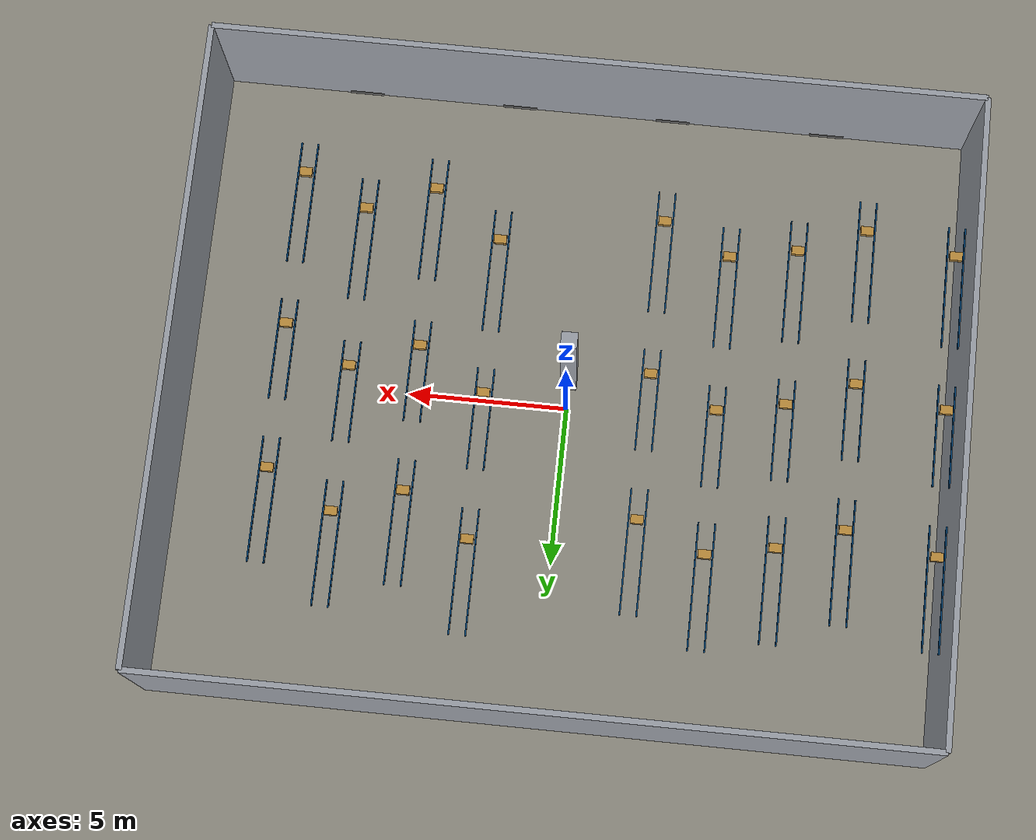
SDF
<sdf version="1.8">
 <world name="warehouse_full_4cam_staggered">
  <model name="ground_plane">
   <static>true</static>
   <link name="link">
    <collision name="collision">
     <geometry><plane><normal>0 0 1</normal><size>24.5 20.5</size></plane></geometry>
    </collision>
    <visual name="visual">
     <geometry><plane><normal>0 0 1</normal><size>24.5 20.5</size></plane></geometry>
     <material>
      <ambient>0.56 0.55 0.51 1</ambient>
      <diffuse>0.56 0.55 0.51 1</diffuse>
      <specular>0.05 0.05 0.05 1</specular>
     </material>
    </visual>
   </link>
  </model>
  <model name="warehouse_walls">
   <static>true</static>
   <link name="wall_east">
    <pose>12.000 0.000 2.250 0 0 0</pose>
    <collision name="collision"><geometry><box><size>0.180 20.000 4.500</size></box></geometry></collision>
    <sensor name="contact" type="contact">
     <contact><collision>collision</collision></contact>
     <update_rate>60</update_rate>
    </sensor>
    <visual name="visual">
     <geometry><box><size>0.180 20.000 4.500</size></box></geometry>
     <material><ambient>0.62 0.64 0.67 1</ambient><diffuse>0.62 0.64 0.67 1</diffuse></material>
    </visual>
   </link>
   <link name="wall_west">
    <pose>-12.000 0.000 2.250 0 0 0</pose>
    <collision name="collision"><geometry><box><size>0.180 20.000 4.500</size></box></geometry></collision>
    <sensor name="contact" type="contact">
     <contact><collision>collision</collision></contact>
     <update_rate>60</update_rate>
    </sensor>
    <visual name="visual">
     <geometry><box><size>0.180 20.000 4.500</size></box></geometry>
     <material><ambient>0.62 0.64 0.67 1</ambient><diffuse>0.62 0.64 0.67 1</diffuse></material>
    </visual>
   </link>
   <link name="wall_north">
    <pose>0.000 10.000 2.250 0 0 0</pose>
    <collision name="collision"><geometry><box><size>24.000 0.180 4.500</size></box></geometry></collision>
    <sensor name="contact" type="contact">
     <contact><collision>collision</collision></contact>
     <update_rate>60</update_rate>
    </sensor>
    <visual name="visual">
     <geometry><box><size>24.000 0.180 4.500</size></box></geometry>
     <material><ambient>0.62 0.64 0.67 1</ambient><diffuse>0.62 0.64 0.67 1</diffuse></material>
    </visual>
   </link>
   <link name="wall_south">
    <pose>0.000 -10.000 2.250 0 0 0</pose>
    <collision name="collision"><geometry><box><size>24.000 0.180 4.500</size></box></geometry></collision>
    <sensor name="contact" type="contact">
     <contact><collision>collision</collision></contact>
     <update_rate>60</update_rate>
    </sensor>
    <visual name="visual">
     <geometry><box><size>24.000 0.180 4.500</size></box></geometry>
     <material><ambient>0.62 0.64 0.67 1</ambient><diffuse>0.62 0.64 0.67 1</diffuse></material>
    </visual>
   </link>
   <link name="south_dock_a">
    <pose>-7.500 -9.920 0.075 0 0 0</pose>
    <visual name="visual">
     <geometry><box><size>1.100 0.070 0.150</size></box></geometry>
     <material><ambient>0.50 0.50 0.50 1</ambient><diffuse>0.50 0.50 0.50 1</diffuse></material>
    </visual>
   </link>
   <link name="south_dock_b">
    <pose>-2.500 -9.920 0.075 0 0 0</pose>
    <visual name="visual">
     <geometry><box><size>1.100 0.070 0.150</size></box></geometry>
     <material><ambient>0.50 0.50 0.50 1</ambient><diffuse>0.50 0.50 0.50 1</diffuse></material>
    </visual>
   </link>
   <link name="south_dock_c">
    <pose>2.500 -9.920 0.075 0 0 0</pose>
    <visual name="visual">
     <geometry><box><size>1.100 0.070 0.150</size></box></geometry>
     <material><ambient>0.50 0.50 0.50 1</ambient><diffuse>0.50 0.50 0.50 1</diffuse></material>
    </visual>
   </link>
   <link name="south_dock_d">
    <pose>7.500 -9.920 0.075 0 0 0</pose>
    <visual name="visual">
     <geometry><box><size>1.100 0.070 0.150</size></box></geometry>
     <material><ambient>0.50 0.50 0.50 1</ambient><diffuse>0.50 0.50 0.50 1</diffuse></material>
    </visual>
   </link>
   <link name="north_dock_a">
    <pose>-5.000 9.920 0.075 0 0 0</pose>
    <visual name="visual">
     <geometry><box><size>1.100 0.070 0.150</size></box></geometry>
     <material><ambient>0.50 0.50 0.50 1</ambient><diffuse>0.50 0.50 0.50 1</diffuse></material>
    </visual>
   </link>
   <link name="north_dock_b">
    <pose>5.000 9.920 0.075 0 0 0</pose>
    <visual name="visual">
     <geometry><box><size>1.100 0.070 0.150</size></box></geometry>
     <material><ambient>0.50 0.50 0.50 1</ambient><diffuse>0.50 0.50 0.50 1</diffuse></material>
    </visual>
   </link>
  </model>
  <model name="warehouse_rack_occluders">
   <static>true</static>
   <link name="rack_W1_south">
    <pose>-8.8250 -5.1000 1.0450 0.0000 0.0000 0.0000</pose>
    <collision name="collision"><geometry><box><size>0.550 3.900 2.090</size></box></geometry></collision>
    <sensor name="contact" type="contact">
     <contact><collision>collision</collision></contact>
     <update_rate>60</update_rate>
    </sensor>
   </link>
   <link name="rail_W1_south_west">
    <pose>-9.0800 -5.1000 2.1600 0.0000 0.0000 0.0000</pose>
    <visual name="visual">
     <geometry><box><size>0.040 3.900 0.100</size></box></geometry>
     <material><ambient>0.00 0.28 0.50 1</ambient><diffuse>0.00 0.28 0.50 1</diffuse></material>
    </visual>
   </link>
   <link name="rail_W1_south_east">
    <pose>-8.5700 -5.1000 2.1600 0.0000 0.0000 0.0000</pose>
    <visual name="visual">
     <geometry><box><size>0.040 3.900 0.100</size></box></geometry>
     <material><ambient>0.00 0.28 0.50 1</ambient><diffuse>0.00 0.28 0.50 1</diffuse></material>
    </visual>
   </link>
   <link name="shelfbox_W1_south">
    <pose>-8.8250 -6.0750 2.2900 0.0000 0.0000 0.0000</pose>
    <visual name="visual">
     <geometry><box><size>0.390 0.270 0.160</size></box></geometry>
     <material><ambient>0.75 0.56 0.24 1</ambient><diffuse>0.75 0.56 0.24 1</diffuse></material>
    </visual>
   </link>
   <link name="rack_W1_mid">
    <pose>-8.8250 -0.3500 1.0450 0.0000 0.0000 0.0000</pose>
    <collision name="collision"><geometry><box><size>0.550 3.200 2.090</size></box></geometry></collision>
    <sensor name="contact" type="contact">
     <contact><collision>collision</collision></contact>
     <update_rate>60</update_rate>
    </sensor>
   </link>
   <link name="rail_W1_mid_west">
    <pose>-9.0800 -0.3500 2.1600 0.0000 0.0000 0.0000</pose>
    <visual name="visual">
     <geometry><box><size>0.040 3.200 0.100</size></box></geometry>
     <material><ambient>0.00 0.28 0.50 1</ambient><diffuse>0.00 0.28 0.50 1</diffuse></material>
    </visual>
   </link>
   <link name="rail_W1_mid_east">
    <pose>-8.5700 -0.3500 2.1600 0.0000 0.0000 0.0000</pose>
    <visual name="visual">
     <geometry><box><size>0.040 3.200 0.100</size></box></geometry>
     <material><ambient>0.00 0.28 0.50 1</ambient><diffuse>0.00 0.28 0.50 1</diffuse></material>
    </visual>
   </link>
   <link name="shelfbox_W1_mid">
    <pose>-8.8250 -1.1500 2.2900 0.0000 0.0000 0.0000</pose>
    <visual name="visual">
     <geometry><box><size>0.390 0.270 0.160</size></box></geometry>
     <material><ambient>0.75 0.56 0.24 1</ambient><diffuse>0.75 0.56 0.24 1</diffuse></material>
    </visual>
   </link>
   <link name="rack_W1_north">
    <pose>-8.8250 4.4000 1.0450 0.0000 0.0000 0.0000</pose>
    <collision name="collision"><geometry><box><size>0.550 3.900 2.090</size></box></geometry></collision>
    <sensor name="contact" type="contact">
     <contact><collision>collision</collision></contact>
     <update_rate>60</update_rate>
    </sensor>
   </link>
   <link name="rail_W1_north_west">
    <pose>-9.0800 4.4000 2.1600 0.0000 0.0000 0.0000</pose>
    <visual name="visual">
     <geometry><box><size>0.040 3.900 0.100</size></box></geometry>
     <material><ambient>0.00 0.28 0.50 1</ambient><diffuse>0.00 0.28 0.50 1</diffuse></material>
    </visual>
   </link>
   <link name="rail_W1_north_east">
    <pose>-8.5700 4.4000 2.1600 0.0000 0.0000 0.0000</pose>
    <visual name="visual">
     <geometry><box><size>0.040 3.900 0.100</size></box></geometry>
     <material><ambient>0.00 0.28 0.50 1</ambient><diffuse>0.00 0.28 0.50 1</diffuse></material>
    </visual>
   </link>
   <link name="shelfbox_W1_north">
    <pose>-8.8250 3.4250 2.2900 0.0000 0.0000 0.0000</pose>
    <visual name="visual">
     <geometry><box><size>0.390 0.270 0.160</size></box></geometry>
     <material><ambient>0.75 0.56 0.24 1</ambient><diffuse>0.75 0.56 0.24 1</diffuse></material>
    </visual>
   </link>
   <link name="rack_W2_south">
    <pose>-6.7250 -4.2500 1.0450 0.0000 0.0000 0.0000</pose>
    <collision name="collision"><geometry><box><size>0.550 3.900 2.090</size></box></geometry></collision>
    <sensor name="contact" type="contact">
     <contact><collision>collision</collision></contact>
     <update_rate>60</update_rate>
    </sensor>
   </link>
   <link name="rail_W2_south_west">
    <pose>-6.9800 -4.2500 2.1600 0.0000 0.0000 0.0000</pose>
    <visual name="visual">
     <geometry><box><size>0.040 3.900 0.100</size></box></geometry>
     <material><ambient>0.00 0.28 0.50 1</ambient><diffuse>0.00 0.28 0.50 1</diffuse></material>
    </visual>
   </link>
   <link name="rail_W2_south_east">
    <pose>-6.4700 -4.2500 2.1600 0.0000 0.0000 0.0000</pose>
    <visual name="visual">
     <geometry><box><size>0.040 3.900 0.100</size></box></geometry>
     <material><ambient>0.00 0.28 0.50 1</ambient><diffuse>0.00 0.28 0.50 1</diffuse></material>
    </visual>
   </link>
   <link name="shelfbox_W2_south">
    <pose>-6.7250 -5.2250 2.2900 0.0000 0.0000 0.0000</pose>
    <visual name="visual">
     <geometry><box><size>0.390 0.270 0.160</size></box></geometry>
     <material><ambient>0.75 0.56 0.24 1</ambient><diffuse>0.75 0.56 0.24 1</diffuse></material>
    </visual>
   </link>
   <link name="rack_W2_mid">
    <pose>-6.7250 0.5000 1.0450 0.0000 0.0000 0.0000</pose>
    <collision name="collision"><geometry><box><size>0.550 3.200 2.090</size></box></geometry></collision>
    <sensor name="contact" type="contact">
     <contact><collision>collision</collision></contact>
     <update_rate>60</update_rate>
    </sensor>
   </link>
   <link name="rail_W2_mid_west">
    <pose>-6.9800 0.5000 2.1600 0.0000 0.0000 0.0000</pose>
    <visual name="visual">
     <geometry><box><size>0.040 3.200 0.100</size></box></geometry>
     <material><ambient>0.00 0.28 0.50 1</ambient><diffuse>0.00 0.28 0.50 1</diffuse></material>
    </visual>
   </link>
   <link name="rail_W2_mid_east">
    <pose>-6.4700 0.5000 2.1600 0.0000 0.0000 0.0000</pose>
    <visual name="visual">
     <geometry><box><size>0.040 3.200 0.100</size></box></geometry>
     <material><ambient>0.00 0.28 0.50 1</ambient><diffuse>0.00 0.28 0.50 1</diffuse></material>
    </visual>
   </link>
   <link name="shelfbox_W2_mid">
    <pose>-6.7250 -0.3000 2.2900 0.0000 0.0000 0.0000</pose>
    <visual name="visual">
     <geometry><box><size>0.390 0.270 0.160</size></box></geometry>
     <material><ambient>0.75 0.56 0.24 1</ambient><diffuse>0.75 0.56 0.24 1</diffuse></material>
    </visual>
   </link>
   <link name="rack_W2_north">
    <pose>-6.7250 5.2500 1.3050 0.0000 0.0000 0.0000</pose>
    <collision name="collision"><geometry><box><size>0.550 3.900 2.610</size></box></geometry></collision>
    <sensor name="contact" type="contact">
     <contact><collision>collision</collision></contact>
     <update_rate>60</update_rate>
    </sensor>
   </link>
   <link name="rail_W2_north_west">
    <pose>-6.9800 5.2500 2.6800 0.0000 0.0000 0.0000</pose>
    <visual name="visual">
     <geometry><box><size>0.040 3.900 0.100</size></box></geometry>
     <material><ambient>0.00 0.28 0.50 1</ambient><diffuse>0.00 0.28 0.50 1</diffuse></material>
    </visual>
   </link>
   <link name="rail_W2_north_east">
    <pose>-6.4700 5.2500 2.6800 0.0000 0.0000 0.0000</pose>
    <visual name="visual">
     <geometry><box><size>0.040 3.900 0.100</size></box></geometry>
     <material><ambient>0.00 0.28 0.50 1</ambient><diffuse>0.00 0.28 0.50 1</diffuse></material>
    </visual>
   </link>
   <link name="shelfbox_W2_north">
    <pose>-6.7250 4.2750 2.8100 0.0000 0.0000 0.0000</pose>
    <visual name="visual">
     <geometry><box><size>0.390 0.270 0.160</size></box></geometry>
     <material><ambient>0.75 0.56 0.24 1</ambient><diffuse>0.75 0.56 0.24 1</diffuse></material>
    </visual>
   </link>
   <link name="rack_W3_south">
    <pose>-4.6250 -3.8500 1.0450 0.0000 0.0000 0.0000</pose>
    <collision name="collision"><geometry><box><size>0.550 3.900 2.090</size></box></geometry></collision>
    <sensor name="contact" type="contact">
     <contact><collision>collision</collision></contact>
     <update_rate>60</update_rate>
    </sensor>
   </link>
   <link name="rail_W3_south_west">
    <pose>-4.8800 -3.8500 2.1600 0.0000 0.0000 0.0000</pose>
    <visual name="visual">
     <geometry><box><size>0.040 3.900 0.100</size></box></geometry>
     <material><ambient>0.00 0.28 0.50 1</ambient><diffuse>0.00 0.28 0.50 1</diffuse></material>
    </visual>
   </link>
   <link name="rail_W3_south_east">
    <pose>-4.3700 -3.8500 2.1600 0.0000 0.0000 0.0000</pose>
    <visual name="visual">
     <geometry><box><size>0.040 3.900 0.100</size></box></geometry>
     <material><ambient>0.00 0.28 0.50 1</ambient><diffuse>0.00 0.28 0.50 1</diffuse></material>
    </visual>
   </link>
   <link name="shelfbox_W3_south">
    <pose>-4.6250 -4.8250 2.2900 0.0000 0.0000 0.0000</pose>
    <visual name="visual">
     <geometry><box><size>0.390 0.270 0.160</size></box></geometry>
     <material><ambient>0.75 0.56 0.24 1</ambient><diffuse>0.75 0.56 0.24 1</diffuse></material>
    </visual>
   </link>
   <link name="rack_W3_mid">
    <pose>-4.6250 0.9000 1.0450 0.0000 0.0000 0.0000</pose>
    <collision name="collision"><geometry><box><size>0.550 3.200 2.090</size></box></geometry></collision>
    <sensor name="contact" type="contact">
     <contact><collision>collision</collision></contact>
     <update_rate>60</update_rate>
    </sensor>
   </link>
   <link name="rail_W3_mid_west">
    <pose>-4.8800 0.9000 2.1600 0.0000 0.0000 0.0000</pose>
    <visual name="visual">
     <geometry><box><size>0.040 3.200 0.100</size></box></geometry>
     <material><ambient>0.00 0.28 0.50 1</ambient><diffuse>0.00 0.28 0.50 1</diffuse></material>
    </visual>
   </link>
   <link name="rail_W3_mid_east">
    <pose>-4.3700 0.9000 2.1600 0.0000 0.0000 0.0000</pose>
    <visual name="visual">
     <geometry><box><size>0.040 3.200 0.100</size></box></geometry>
     <material><ambient>0.00 0.28 0.50 1</ambient><diffuse>0.00 0.28 0.50 1</diffuse></material>
    </visual>
   </link>
   <link name="shelfbox_W3_mid">
    <pose>-4.6250 0.1000 2.2900 0.0000 0.0000 0.0000</pose>
    <visual name="visual">
     <geometry><box><size>0.390 0.270 0.160</size></box></geometry>
     <material><ambient>0.75 0.56 0.24 1</ambient><diffuse>0.75 0.56 0.24 1</diffuse></material>
    </visual>
   </link>
   <link name="rack_W3_north">
    <pose>-4.6250 5.6500 1.3050 0.0000 0.0000 0.0000</pose>
    <collision name="collision"><geometry><box><size>0.550 3.900 2.610</size></box></geometry></collision>
    <sensor name="contact" type="contact">
     <contact><collision>collision</collision></contact>
     <update_rate>60</update_rate>
    </sensor>
   </link>
   <link name="rail_W3_north_west">
    <pose>-4.8800 5.6500 2.6800 0.0000 0.0000 0.0000</pose>
    <visual name="visual">
     <geometry><box><size>0.040 3.900 0.100</size></box></geometry>
     <material><ambient>0.00 0.28 0.50 1</ambient><diffuse>0.00 0.28 0.50 1</diffuse></material>
    </visual>
   </link>
   <link name="rail_W3_north_east">
    <pose>-4.3700 5.6500 2.6800 0.0000 0.0000 0.0000</pose>
    <visual name="visual">
     <geometry><box><size>0.040 3.900 0.100</size></box></geometry>
     <material><ambient>0.00 0.28 0.50 1</ambient><diffuse>0.00 0.28 0.50 1</diffuse></material>
    </visual>
   </link>
   <link name="shelfbox_W3_north">
    <pose>-4.6250 4.6750 2.8100 0.0000 0.0000 0.0000</pose>
    <visual name="visual">
     <geometry><box><size>0.390 0.270 0.160</size></box></geometry>
     <material><ambient>0.75 0.56 0.24 1</ambient><diffuse>0.75 0.56 0.24 1</diffuse></material>
    </visual>
   </link>
   <link name="rack_W4_south">
    <pose>-2.5250 -4.8000 1.0450 0.0000 0.0000 0.0000</pose>
    <collision name="collision"><geometry><box><size>0.550 3.900 2.090</size></box></geometry></collision>
    <sensor name="contact" type="contact">
     <contact><collision>collision</collision></contact>
     <update_rate>60</update_rate>
    </sensor>
   </link>
   <link name="rail_W4_south_west">
    <pose>-2.7800 -4.8000 2.1600 0.0000 0.0000 0.0000</pose>
    <visual name="visual">
     <geometry><box><size>0.040 3.900 0.100</size></box></geometry>
     <material><ambient>0.00 0.28 0.50 1</ambient><diffuse>0.00 0.28 0.50 1</diffuse></material>
    </visual>
   </link>
   <link name="rail_W4_south_east">
    <pose>-2.2700 -4.8000 2.1600 0.0000 0.0000 0.0000</pose>
    <visual name="visual">
     <geometry><box><size>0.040 3.900 0.100</size></box></geometry>
     <material><ambient>0.00 0.28 0.50 1</ambient><diffuse>0.00 0.28 0.50 1</diffuse></material>
    </visual>
   </link>
   <link name="shelfbox_W4_south">
    <pose>-2.5250 -5.7750 2.2900 0.0000 0.0000 0.0000</pose>
    <visual name="visual">
     <geometry><box><size>0.390 0.270 0.160</size></box></geometry>
     <material><ambient>0.75 0.56 0.24 1</ambient><diffuse>0.75 0.56 0.24 1</diffuse></material>
    </visual>
   </link>
   <link name="rack_W4_mid">
    <pose>-2.5250 -0.0500 1.0450 0.0000 0.0000 0.0000</pose>
    <collision name="collision"><geometry><box><size>0.550 3.200 2.090</size></box></geometry></collision>
    <sensor name="contact" type="contact">
     <contact><collision>collision</collision></contact>
     <update_rate>60</update_rate>
    </sensor>
   </link>
   <link name="rail_W4_mid_west">
    <pose>-2.7800 -0.0500 2.1600 0.0000 0.0000 0.0000</pose>
    <visual name="visual">
     <geometry><box><size>0.040 3.200 0.100</size></box></geometry>
     <material><ambient>0.00 0.28 0.50 1</ambient><diffuse>0.00 0.28 0.50 1</diffuse></material>
    </visual>
   </link>
   <link name="rail_W4_mid_east">
    <pose>-2.2700 -0.0500 2.1600 0.0000 0.0000 0.0000</pose>
    <visual name="visual">
     <geometry><box><size>0.040 3.200 0.100</size></box></geometry>
     <material><ambient>0.00 0.28 0.50 1</ambient><diffuse>0.00 0.28 0.50 1</diffuse></material>
    </visual>
   </link>
   <link name="shelfbox_W4_mid">
    <pose>-2.5250 -0.8500 2.2900 0.0000 0.0000 0.0000</pose>
    <visual name="visual">
     <geometry><box><size>0.390 0.270 0.160</size></box></geometry>
     <material><ambient>0.75 0.56 0.24 1</ambient><diffuse>0.75 0.56 0.24 1</diffuse></material>
    </visual>
   </link>
   <link name="rack_W4_north">
    <pose>-2.5250 4.7000 1.0450 0.0000 0.0000 0.0000</pose>
    <collision name="collision"><geometry><box><size>0.550 3.900 2.090</size></box></geometry></collision>
    <sensor name="contact" type="contact">
     <contact><collision>collision</collision></contact>
     <update_rate>60</update_rate>
    </sensor>
   </link>
   <link name="rail_W4_north_west">
    <pose>-2.7800 4.7000 2.1600 0.0000 0.0000 0.0000</pose>
    <visual name="visual">
     <geometry><box><size>0.040 3.900 0.100</size></box></geometry>
     <material><ambient>0.00 0.28 0.50 1</ambient><diffuse>0.00 0.28 0.50 1</diffuse></material>
    </visual>
   </link>
   <link name="rail_W4_north_east">
    <pose>-2.2700 4.7000 2.1600 0.0000 0.0000 0.0000</pose>
    <visual name="visual">
     <geometry><box><size>0.040 3.900 0.100</size></box></geometry>
     <material><ambient>0.00 0.28 0.50 1</ambient><diffuse>0.00 0.28 0.50 1</diffuse></material>
    </visual>
   </link>
   <link name="shelfbox_W4_north">
    <pose>-2.5250 3.7250 2.2900 0.0000 0.0000 0.0000</pose>
    <visual name="visual">
     <geometry><box><size>0.390 0.270 0.160</size></box></geometry>
     <material><ambient>0.75 0.56 0.24 1</ambient><diffuse>0.75 0.56 0.24 1</diffuse></material>
    </visual>
   </link>
   <link name="rack_E1_south">
    <pose>2.5250 -3.7000 1.0450 0.0000 0.0000 0.0000</pose>
    <collision name="collision"><geometry><box><size>0.550 3.900 2.090</size></box></geometry></collision>
    <sensor name="contact" type="contact">
     <contact><collision>collision</collision></contact>
     <update_rate>60</update_rate>
    </sensor>
   </link>
   <link name="rail_E1_south_west">
    <pose>2.2700 -3.7000 2.1600 0.0000 0.0000 0.0000</pose>
    <visual name="visual">
     <geometry><box><size>0.040 3.900 0.100</size></box></geometry>
     <material><ambient>0.00 0.28 0.50 1</ambient><diffuse>0.00 0.28 0.50 1</diffuse></material>
    </visual>
   </link>
   <link name="rail_E1_south_east">
    <pose>2.7800 -3.7000 2.1600 0.0000 0.0000 0.0000</pose>
    <visual name="visual">
     <geometry><box><size>0.040 3.900 0.100</size></box></geometry>
     <material><ambient>0.00 0.28 0.50 1</ambient><diffuse>0.00 0.28 0.50 1</diffuse></material>
    </visual>
   </link>
   <link name="shelfbox_E1_south">
    <pose>2.5250 -4.6750 2.2900 0.0000 0.0000 0.0000</pose>
    <visual name="visual">
     <geometry><box><size>0.390 0.270 0.160</size></box></geometry>
     <material><ambient>0.75 0.56 0.24 1</ambient><diffuse>0.75 0.56 0.24 1</diffuse></material>
    </visual>
   </link>
   <link name="rack_E1_mid">
    <pose>2.5250 1.0500 1.0450 0.0000 0.0000 0.0000</pose>
    <collision name="collision"><geometry><box><size>0.550 3.200 2.090</size></box></geometry></collision>
    <sensor name="contact" type="contact">
     <contact><collision>collision</collision></contact>
     <update_rate>60</update_rate>
    </sensor>
   </link>
   <link name="rail_E1_mid_west">
    <pose>2.2700 1.0500 2.1600 0.0000 0.0000 0.0000</pose>
    <visual name="visual">
     <geometry><box><size>0.040 3.200 0.100</size></box></geometry>
     <material><ambient>0.00 0.28 0.50 1</ambient><diffuse>0.00 0.28 0.50 1</diffuse></material>
    </visual>
   </link>
   <link name="rail_E1_mid_east">
    <pose>2.7800 1.0500 2.1600 0.0000 0.0000 0.0000</pose>
    <visual name="visual">
     <geometry><box><size>0.040 3.200 0.100</size></box></geometry>
     <material><ambient>0.00 0.28 0.50 1</ambient><diffuse>0.00 0.28 0.50 1</diffuse></material>
    </visual>
   </link>
   <link name="shelfbox_E1_mid">
    <pose>2.5250 0.2500 2.2900 0.0000 0.0000 0.0000</pose>
    <visual name="visual">
     <geometry><box><size>0.390 0.270 0.160</size></box></geometry>
     <material><ambient>0.75 0.56 0.24 1</ambient><diffuse>0.75 0.56 0.24 1</diffuse></material>
    </visual>
   </link>
   <link name="rack_E1_north">
    <pose>2.5250 5.8000 1.0450 0.0000 0.0000 0.0000</pose>
    <collision name="collision"><geometry><box><size>0.550 3.900 2.090</size></box></geometry></collision>
    <sensor name="contact" type="contact">
     <contact><collision>collision</collision></contact>
     <update_rate>60</update_rate>
    </sensor>
   </link>
   <link name="rail_E1_north_west">
    <pose>2.2700 5.8000 2.1600 0.0000 0.0000 0.0000</pose>
    <visual name="visual">
     <geometry><box><size>0.040 3.900 0.100</size></box></geometry>
     <material><ambient>0.00 0.28 0.50 1</ambient><diffuse>0.00 0.28 0.50 1</diffuse></material>
    </visual>
   </link>
   <link name="rail_E1_north_east">
    <pose>2.7800 5.8000 2.1600 0.0000 0.0000 0.0000</pose>
    <visual name="visual">
     <geometry><box><size>0.040 3.900 0.100</size></box></geometry>
     <material><ambient>0.00 0.28 0.50 1</ambient><diffuse>0.00 0.28 0.50 1</diffuse></material>
    </visual>
   </link>
   <link name="shelfbox_E1_north">
    <pose>2.5250 4.8250 2.2900 0.0000 0.0000 0.0000</pose>
    <visual name="visual">
     <geometry><box><size>0.390 0.270 0.160</size></box></geometry>
     <material><ambient>0.75 0.56 0.24 1</ambient><diffuse>0.75 0.56 0.24 1</diffuse></material>
    </visual>
   </link>
   <link name="rack_E2_south">
    <pose>4.6250 -5.0000 1.3050 0.0000 0.0000 0.0000</pose>
    <collision name="collision"><geometry><box><size>0.550 3.900 2.610</size></box></geometry></collision>
    <sensor name="contact" type="contact">
     <contact><collision>collision</collision></contact>
     <update_rate>60</update_rate>
    </sensor>
   </link>
   <link name="rail_E2_south_west">
    <pose>4.3700 -5.0000 2.6800 0.0000 0.0000 0.0000</pose>
    <visual name="visual">
     <geometry><box><size>0.040 3.900 0.100</size></box></geometry>
     <material><ambient>0.00 0.28 0.50 1</ambient><diffuse>0.00 0.28 0.50 1</diffuse></material>
    </visual>
   </link>
   <link name="rail_E2_south_east">
    <pose>4.8800 -5.0000 2.6800 0.0000 0.0000 0.0000</pose>
    <visual name="visual">
     <geometry><box><size>0.040 3.900 0.100</size></box></geometry>
     <material><ambient>0.00 0.28 0.50 1</ambient><diffuse>0.00 0.28 0.50 1</diffuse></material>
    </visual>
   </link>
   <link name="shelfbox_E2_south">
    <pose>4.6250 -5.9750 2.8100 0.0000 0.0000 0.0000</pose>
    <visual name="visual">
     <geometry><box><size>0.390 0.270 0.160</size></box></geometry>
     <material><ambient>0.75 0.56 0.24 1</ambient><diffuse>0.75 0.56 0.24 1</diffuse></material>
    </visual>
   </link>
   <link name="rack_E2_mid">
    <pose>4.6250 -0.2500 1.0450 0.0000 0.0000 0.0000</pose>
    <collision name="collision"><geometry><box><size>0.550 3.200 2.090</size></box></geometry></collision>
    <sensor name="contact" type="contact">
     <contact><collision>collision</collision></contact>
     <update_rate>60</update_rate>
    </sensor>
   </link>
   <link name="rail_E2_mid_west">
    <pose>4.3700 -0.2500 2.1600 0.0000 0.0000 0.0000</pose>
    <visual name="visual">
     <geometry><box><size>0.040 3.200 0.100</size></box></geometry>
     <material><ambient>0.00 0.28 0.50 1</ambient><diffuse>0.00 0.28 0.50 1</diffuse></material>
    </visual>
   </link>
   <link name="rail_E2_mid_east">
    <pose>4.8800 -0.2500 2.1600 0.0000 0.0000 0.0000</pose>
    <visual name="visual">
     <geometry><box><size>0.040 3.200 0.100</size></box></geometry>
     <material><ambient>0.00 0.28 0.50 1</ambient><diffuse>0.00 0.28 0.50 1</diffuse></material>
    </visual>
   </link>
   <link name="shelfbox_E2_mid">
    <pose>4.6250 -1.0500 2.2900 0.0000 0.0000 0.0000</pose>
    <visual name="visual">
     <geometry><box><size>0.390 0.270 0.160</size></box></geometry>
     <material><ambient>0.75 0.56 0.24 1</ambient><diffuse>0.75 0.56 0.24 1</diffuse></material>
    </visual>
   </link>
   <link name="rack_E2_north">
    <pose>4.6250 4.5000 1.0450 0.0000 0.0000 0.0000</pose>
    <collision name="collision"><geometry><box><size>0.550 3.900 2.090</size></box></geometry></collision>
    <sensor name="contact" type="contact">
     <contact><collision>collision</collision></contact>
     <update_rate>60</update_rate>
    </sensor>
   </link>
   <link name="rail_E2_north_west">
    <pose>4.3700 4.5000 2.1600 0.0000 0.0000 0.0000</pose>
    <visual name="visual">
     <geometry><box><size>0.040 3.900 0.100</size></box></geometry>
     <material><ambient>0.00 0.28 0.50 1</ambient><diffuse>0.00 0.28 0.50 1</diffuse></material>
    </visual>
   </link>
   <link name="rail_E2_north_east">
    <pose>4.8800 4.5000 2.1600 0.0000 0.0000 0.0000</pose>
    <visual name="visual">
     <geometry><box><size>0.040 3.900 0.100</size></box></geometry>
     <material><ambient>0.00 0.28 0.50 1</ambient><diffuse>0.00 0.28 0.50 1</diffuse></material>
    </visual>
   </link>
   <link name="shelfbox_E2_north">
    <pose>4.6250 3.5250 2.2900 0.0000 0.0000 0.0000</pose>
    <visual name="visual">
     <geometry><box><size>0.390 0.270 0.160</size></box></geometry>
     <material><ambient>0.75 0.56 0.24 1</ambient><diffuse>0.75 0.56 0.24 1</diffuse></material>
    </visual>
   </link>
   <link name="rack_E3_south">
    <pose>6.7250 -4.1500 1.3050 0.0000 0.0000 0.0000</pose>
    <collision name="collision"><geometry><box><size>0.550 3.900 2.610</size></box></geometry></collision>
    <sensor name="contact" type="contact">
     <contact><collision>collision</collision></contact>
     <update_rate>60</update_rate>
    </sensor>
   </link>
   <link name="rail_E3_south_west">
    <pose>6.4700 -4.1500 2.6800 0.0000 0.0000 0.0000</pose>
    <visual name="visual">
     <geometry><box><size>0.040 3.900 0.100</size></box></geometry>
     <material><ambient>0.00 0.28 0.50 1</ambient><diffuse>0.00 0.28 0.50 1</diffuse></material>
    </visual>
   </link>
   <link name="rail_E3_south_east">
    <pose>6.9800 -4.1500 2.6800 0.0000 0.0000 0.0000</pose>
    <visual name="visual">
     <geometry><box><size>0.040 3.900 0.100</size></box></geometry>
     <material><ambient>0.00 0.28 0.50 1</ambient><diffuse>0.00 0.28 0.50 1</diffuse></material>
    </visual>
   </link>
   <link name="shelfbox_E3_south">
    <pose>6.7250 -5.1250 2.8100 0.0000 0.0000 0.0000</pose>
    <visual name="visual">
     <geometry><box><size>0.390 0.270 0.160</size></box></geometry>
     <material><ambient>0.75 0.56 0.24 1</ambient><diffuse>0.75 0.56 0.24 1</diffuse></material>
    </visual>
   </link>
   <link name="rack_E3_mid">
    <pose>6.7250 0.6000 1.0450 0.0000 0.0000 0.0000</pose>
    <collision name="collision"><geometry><box><size>0.550 3.200 2.090</size></box></geometry></collision>
    <sensor name="contact" type="contact">
     <contact><collision>collision</collision></contact>
     <update_rate>60</update_rate>
    </sensor>
   </link>
   <link name="rail_E3_mid_west">
    <pose>6.4700 0.6000 2.1600 0.0000 0.0000 0.0000</pose>
    <visual name="visual">
     <geometry><box><size>0.040 3.200 0.100</size></box></geometry>
     <material><ambient>0.00 0.28 0.50 1</ambient><diffuse>0.00 0.28 0.50 1</diffuse></material>
    </visual>
   </link>
   <link name="rail_E3_mid_east">
    <pose>6.9800 0.6000 2.1600 0.0000 0.0000 0.0000</pose>
    <visual name="visual">
     <geometry><box><size>0.040 3.200 0.100</size></box></geometry>
     <material><ambient>0.00 0.28 0.50 1</ambient><diffuse>0.00 0.28 0.50 1</diffuse></material>
    </visual>
   </link>
   <link name="shelfbox_E3_mid">
    <pose>6.7250 -0.2000 2.2900 0.0000 0.0000 0.0000</pose>
    <visual name="visual">
     <geometry><box><size>0.390 0.270 0.160</size></box></geometry>
     <material><ambient>0.75 0.56 0.24 1</ambient><diffuse>0.75 0.56 0.24 1</diffuse></material>
    </visual>
   </link>
   <link name="rack_E3_north">
    <pose>6.7250 5.3500 1.0450 0.0000 0.0000 0.0000</pose>
    <collision name="collision"><geometry><box><size>0.550 3.900 2.090</size></box></geometry></collision>
    <sensor name="contact" type="contact">
     <contact><collision>collision</collision></contact>
     <update_rate>60</update_rate>
    </sensor>
   </link>
   <link name="rail_E3_north_west">
    <pose>6.4700 5.3500 2.1600 0.0000 0.0000 0.0000</pose>
    <visual name="visual">
     <geometry><box><size>0.040 3.900 0.100</size></box></geometry>
     <material><ambient>0.00 0.28 0.50 1</ambient><diffuse>0.00 0.28 0.50 1</diffuse></material>
    </visual>
   </link>
   <link name="rail_E3_north_east">
    <pose>6.9800 5.3500 2.1600 0.0000 0.0000 0.0000</pose>
    <visual name="visual">
     <geometry><box><size>0.040 3.900 0.100</size></box></geometry>
     <material><ambient>0.00 0.28 0.50 1</ambient><diffuse>0.00 0.28 0.50 1</diffuse></material>
    </visual>
   </link>
   <link name="shelfbox_E3_north">
    <pose>6.7250 4.3750 2.2900 0.0000 0.0000 0.0000</pose>
    <visual name="visual">
     <geometry><box><size>0.390 0.270 0.160</size></box></geometry>
     <material><ambient>0.75 0.56 0.24 1</ambient><diffuse>0.75 0.56 0.24 1</diffuse></material>
    </visual>
   </link>
   <link name="rack_E4_south">
    <pose>8.8250 -5.3000 1.0450 0.0000 0.0000 0.0000</pose>
    <collision name="collision"><geometry><box><size>0.550 3.900 2.090</size></box></geometry></collision>
    <sensor name="contact" type="contact">
     <contact><collision>collision</collision></contact>
     <update_rate>60</update_rate>
    </sensor>
   </link>
   <link name="rail_E4_south_west">
    <pose>8.5700 -5.3000 2.1600 0.0000 0.0000 0.0000</pose>
    <visual name="visual">
     <geometry><box><size>0.040 3.900 0.100</size></box></geometry>
     <material><ambient>0.00 0.28 0.50 1</ambient><diffuse>0.00 0.28 0.50 1</diffuse></material>
    </visual>
   </link>
   <link name="rail_E4_south_east">
    <pose>9.0800 -5.3000 2.1600 0.0000 0.0000 0.0000</pose>
    <visual name="visual">
     <geometry><box><size>0.040 3.900 0.100</size></box></geometry>
     <material><ambient>0.00 0.28 0.50 1</ambient><diffuse>0.00 0.28 0.50 1</diffuse></material>
    </visual>
   </link>
   <link name="shelfbox_E4_south">
    <pose>8.8250 -6.2750 2.2900 0.0000 0.0000 0.0000</pose>
    <visual name="visual">
     <geometry><box><size>0.390 0.270 0.160</size></box></geometry>
     <material><ambient>0.75 0.56 0.24 1</ambient><diffuse>0.75 0.56 0.24 1</diffuse></material>
    </visual>
   </link>
   <link name="rack_E4_mid">
    <pose>8.8250 -0.5500 1.0450 0.0000 0.0000 0.0000</pose>
    <collision name="collision"><geometry><box><size>0.550 3.200 2.090</size></box></geometry></collision>
    <sensor name="contact" type="contact">
     <contact><collision>collision</collision></contact>
     <update_rate>60</update_rate>
    </sensor>
   </link>
   <link name="rail_E4_mid_west">
    <pose>8.5700 -0.5500 2.1600 0.0000 0.0000 0.0000</pose>
    <visual name="visual">
     <geometry><box><size>0.040 3.200 0.100</size></box></geometry>
     <material><ambient>0.00 0.28 0.50 1</ambient><diffuse>0.00 0.28 0.50 1</diffuse></material>
    </visual>
   </link>
   <link name="rail_E4_mid_east">
    <pose>9.0800 -0.5500 2.1600 0.0000 0.0000 0.0000</pose>
    <visual name="visual">
     <geometry><box><size>0.040 3.200 0.100</size></box></geometry>
     <material><ambient>0.00 0.28 0.50 1</ambient><diffuse>0.00 0.28 0.50 1</diffuse></material>
    </visual>
   </link>
   <link name="shelfbox_E4_mid">
    <pose>8.8250 -1.3500 2.2900 0.0000 0.0000 0.0000</pose>
    <visual name="visual">
     <geometry><box><size>0.390 0.270 0.160</size></box></geometry>
     <material><ambient>0.75 0.56 0.24 1</ambient><diffuse>0.75 0.56 0.24 1</diffuse></material>
    </visual>
   </link>
   <link name="rack_E4_north">
    <pose>8.8250 4.2000 1.0450 0.0000 0.0000 0.0000</pose>
    <collision name="collision"><geometry><box><size>0.550 3.900 2.090</size></box></geometry></collision>
    <sensor name="contact" type="contact">
     <contact><collision>collision</collision></contact>
     <update_rate>60</update_rate>
    </sensor>
   </link>
   <link name="rail_E4_north_west">
    <pose>8.5700 4.2000 2.1600 0.0000 0.0000 0.0000</pose>
    <visual name="visual">
     <geometry><box><size>0.040 3.900 0.100</size></box></geometry>
     <material><ambient>0.00 0.28 0.50 1</ambient><diffuse>0.00 0.28 0.50 1</diffuse></material>
    </visual>
   </link>
   <link name="rail_E4_north_east">
    <pose>9.0800 4.2000 2.1600 0.0000 0.0000 0.0000</pose>
    <visual name="visual">
     <geometry><box><size>0.040 3.900 0.100</size></box></geometry>
     <material><ambient>0.00 0.28 0.50 1</ambient><diffuse>0.00 0.28 0.50 1</diffuse></material>
    </visual>
   </link>
   <link name="shelfbox_E4_north">
    <pose>8.8250 3.2250 2.2900 0.0000 0.0000 0.0000</pose>
    <visual name="visual">
     <geometry><box><size>0.390 0.270 0.160</size></box></geometry>
     <material><ambient>0.75 0.56 0.24 1</ambient><diffuse>0.75 0.56 0.24 1</diffuse></material>
    </visual>
   </link>
   <link name="rack_W0_south">
    <pose>-11.635 -4.550 1.045 0 0 0</pose>
    <collision name="collision"><geometry><box><size>0.550 3.900 2.090</size></box></geometry></collision>
    <sensor name="contact" type="contact">
     <contact><collision>collision</collision></contact>
     <update_rate>60</update_rate>
    </sensor>
   </link>
   <link name="rail_W0_south_west">
    <pose>-11.890 -4.550 2.160 0 0 0</pose>
    <visual name="visual">
     <geometry><box><size>0.040 3.900 0.100</size></box></geometry>
     <material><ambient>0.00 0.28 0.50 1</ambient><diffuse>0.00 0.28 0.50 1</diffuse></material>
    </visual>
   </link>
   <link name="rail_W0_south_east">
    <pose>-11.380 -4.550 2.160 0 0 0</pose>
    <visual name="visual">
     <geometry><box><size>0.040 3.900 0.100</size></box></geometry>
     <material><ambient>0.00 0.28 0.50 1</ambient><diffuse>0.00 0.28 0.50 1</diffuse></material>
    </visual>
   </link>
   <link name="shelfbox_W0_south">
    <pose>-11.635 -5.525 2.290 0 0 0</pose>
    <visual name="visual">
     <geometry><box><size>0.390 0.270 0.160</size></box></geometry>
     <material><ambient>0.75 0.56 0.24 1</ambient><diffuse>0.75 0.56 0.24 1</diffuse></material>
    </visual>
   </link>
   <link name="rack_W0_mid">
    <pose>-11.635 0.200 1.045 0 0 0</pose>
    <collision name="collision"><geometry><box><size>0.550 3.200 2.090</size></box></geometry></collision>
    <sensor name="contact" type="contact">
     <contact><collision>collision</collision></contact>
     <update_rate>60</update_rate>
    </sensor>
   </link>
   <link name="rail_W0_mid_west">
    <pose>-11.890 0.200 2.160 0 0 0</pose>
    <visual name="visual">
     <geometry><box><size>0.040 3.200 0.100</size></box></geometry>
     <material><ambient>0.00 0.28 0.50 1</ambient><diffuse>0.00 0.28 0.50 1</diffuse></material>
    </visual>
   </link>
   <link name="rail_W0_mid_east">
    <pose>-11.380 0.200 2.160 0 0 0</pose>
    <visual name="visual">
     <geometry><box><size>0.040 3.200 0.100</size></box></geometry>
     <material><ambient>0.00 0.28 0.50 1</ambient><diffuse>0.00 0.28 0.50 1</diffuse></material>
    </visual>
   </link>
   <link name="shelfbox_W0_mid">
    <pose>-11.635 -0.600 2.290 0 0 0</pose>
    <visual name="visual">
     <geometry><box><size>0.390 0.270 0.160</size></box></geometry>
     <material><ambient>0.75 0.56 0.24 1</ambient><diffuse>0.75 0.56 0.24 1</diffuse></material>
    </visual>
   </link>
   <link name="rack_W0_north">
    <pose>-11.635 4.950 1.045 0 0 0</pose>
    <collision name="collision"><geometry><box><size>0.550 3.900 2.090</size></box></geometry></collision>
    <sensor name="contact" type="contact">
     <contact><collision>collision</collision></contact>
     <update_rate>60</update_rate>
    </sensor>
   </link>
   <link name="rail_W0_north_west">
    <pose>-11.890 4.950 2.160 0 0 0</pose>
    <visual name="visual">
     <geometry><box><size>0.040 3.900 0.100</size></box></geometry>
     <material><ambient>0.00 0.28 0.50 1</ambient><diffuse>0.00 0.28 0.50 1</diffuse></material>
    </visual>
   </link>
   <link name="rail_W0_north_east">
    <pose>-11.380 4.950 2.160 0 0 0</pose>
    <visual name="visual">
     <geometry><box><size>0.040 3.900 0.100</size></box></geometry>
     <material><ambient>0.00 0.28 0.50 1</ambient><diffuse>0.00 0.28 0.50 1</diffuse></material>
    </visual>
   </link>
   <link name="shelfbox_W0_north">
    <pose>-11.635 3.975 2.290 0 0 0</pose>
    <visual name="visual">
     <geometry><box><size>0.390 0.270 0.160</size></box></geometry>
     <material><ambient>0.75 0.56 0.24 1</ambient><diffuse>0.75 0.56 0.24 1</diffuse></material>
    </visual>
   </link>
   <link name="support_pillar">
    <pose>0.000 -0.900 2.600 0 0 0</pose>
    <collision name="collision"><geometry><box><size>0.500 0.500 5.200</size></box></geometry></collision>
    <sensor name="contact" type="contact">
     <contact><collision>collision</collision></contact>
     <update_rate>60</update_rate>
    </sensor>
    <visual name="visual">
     <geometry><box><size>0.500 0.500 5.200</size></box></geometry>
     <material><ambient>0.62 0.64 0.67 1</ambient><diffuse>0.62 0.64 0.67 1</diffuse></material>
    </visual>
   </link>
  </model>
  <include>
   <name>external_camera</name>
   <uri>model://external_camera</uri>
   <pose>-8.1000 -10.0000 6.1000 0.0000 0.9200 1.3265</pose>
  </include>
  <include>
   <name>external_camera_c</name>
   <uri>model://external_camera_c</uri>
   <pose>4.2500 -10.0000 6.1000 0.0000 0.9200 1.8326</pose>
  </include>
 </world>
</sdf>
